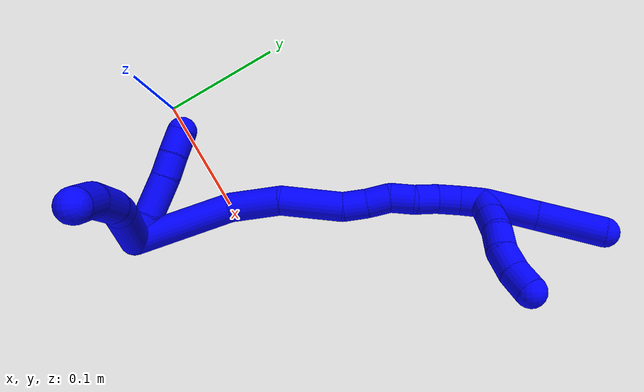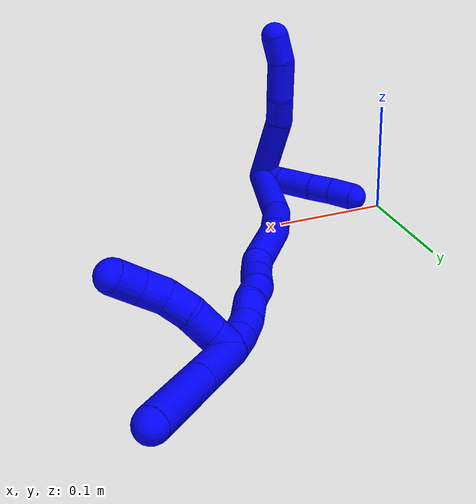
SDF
<sdf version="1.7">
 <world name="default">
  <model name="1">
   <static>0</static>
   <link name="1">
    <collision name="collision-cylinder-e_1_2_8">
     <pose>-0.017697 -0.02132 0.017835 0.874168 -0.566948 -0.27056</pose>
     <geometry><cylinder><radius>0.0125</radius><length>0.065904</length></cylinder></geometry>
     <surface>
      <friction><ode><mu>1.16</mu><mu2>1.16</mu2><slip1>0</slip1><slip2>0</slip2></ode></friction>
      <contact><ode><kp>1e+06</kp><kd>1</kd><max_vel>0</max_vel><min_depth>0.001</min_depth></ode></contact>
     </surface>
    </collision>
    <visual name="visual-cylinder-e_1_2_8">
     <pose>-0.017697 -0.02132 0.017835 0.874168 -0.566948 -0.27056</pose>
     <geometry><cylinder><radius>0.0125</radius><length>0.065904</length></cylinder></geometry>
     <material><ambient>0 0 1 1</ambient></material>
    </visual>
    <collision name="collision-cylinder-e_2_8_9">
     <pose>-0.039499 -0.051911 0.04321 0.888013 -0.330856 -0.158502</pose>
     <geometry><cylinder><radius>0.0125</radius><length>0.02527</length></cylinder></geometry>
     <surface>
      <friction><ode><mu>1.16</mu><mu2>1.16</mu2><slip1>0</slip1><slip2>0</slip2></ode></friction>
      <contact><ode><kp>1e+06</kp><kd>1</kd><max_vel>0</max_vel><min_depth>0.001</min_depth></ode></contact>
     </surface>
    </collision>
    <visual name="visual-cylinder-e_2_8_9">
     <pose>-0.039499 -0.051911 0.04321 0.888013 -0.330856 -0.158502</pose>
     <geometry><cylinder><radius>0.0125</radius><length>0.02527</length></cylinder></geometry>
     <material><ambient>0 0 1 1</ambient></material>
    </visual>
    <collision name="collision-cylinder-e_3_9_10">
     <pose>-0.049323 -0.075464 0.058083 1.09645 -0.342241 -0.21028</pose>
     <geometry><cylinder><radius>0.0125</radius><length>0.034086</length></cylinder></geometry>
     <surface>
      <friction><ode><mu>1.16</mu><mu2>1.16</mu2><slip1>0</slip1><slip2>0</slip2></ode></friction>
      <contact><ode><kp>1e+06</kp><kd>1</kd><max_vel>0</max_vel><min_depth>0.001</min_depth></ode></contact>
     </surface>
    </collision>
    <visual name="visual-cylinder-e_3_9_10">
     <pose>-0.049323 -0.075464 0.058083 1.09645 -0.342241 -0.21028</pose>
     <geometry><cylinder><radius>0.0125</radius><length>0.034086</length></cylinder></geometry>
     <material><ambient>0 0 1 1</ambient></material>
    </visual>
    <collision name="collision-cylinder-e_4_10_6">
     <pose>-0.055893 -0.100958 0.070572 1.13977 -0.068822 -0.044112</pose>
     <geometry><cylinder><radius>0.0125</radius><length>0.02474</length></cylinder></geometry>
     <surface>
      <friction><ode><mu>1.16</mu><mu2>1.16</mu2><slip1>0</slip1><slip2>0</slip2></ode></friction>
      <contact><ode><kp>1e+06</kp><kd>1</kd><max_vel>0</max_vel><min_depth>0.001</min_depth></ode></contact>
     </surface>
    </collision>
    <visual name="visual-cylinder-e_4_10_6">
     <pose>-0.055893 -0.100958 0.070572 1.13977 -0.068822 -0.044112</pose>
     <geometry><cylinder><radius>0.0125</radius><length>0.02474</length></cylinder></geometry>
     <material><ambient>0 0 1 1</ambient></material>
    </visual>
    <collision name="collision-cylinder-e_1_2_11">
     <pose>-0.009758 0.005284 0.005185 -0.794838 -0.921752 0.410966</pose>
     <geometry><cylinder><radius>0.0125</radius><length>0.024497</length></cylinder></geometry>
     <surface>
      <friction><ode><mu>1.16</mu><mu2>1.16</mu2><slip1>0</slip1><slip2>0</slip2></ode></friction>
      <contact><ode><kp>1e+06</kp><kd>1</kd><max_vel>0</max_vel><min_depth>0.001</min_depth></ode></contact>
     </surface>
    </collision>
    <visual name="visual-cylinder-e_1_2_11">
     <pose>-0.009758 0.005284 0.005185 -0.794838 -0.921752 0.410966</pose>
     <geometry><cylinder><radius>0.0125</radius><length>0.024497</length></cylinder></geometry>
     <material><ambient>0 0 1 1</ambient></material>
    </visual>
    <collision name="collision-cylinder-e_2_11_12">
     <pose>-0.033546 0.018295 0.015755 -0.962186 -0.979616 0.542864</pose>
     <geometry><cylinder><radius>0.0125</radius><length>0.033796</length></cylinder></geometry>
     <surface>
      <friction><ode><mu>1.16</mu><mu2>1.16</mu2><slip1>0</slip1><slip2>0</slip2></ode></friction>
      <contact><ode><kp>1e+06</kp><kd>1</kd><max_vel>0</max_vel><min_depth>0.001</min_depth></ode></contact>
     </surface>
    </collision>
    <visual name="visual-cylinder-e_2_11_12">
     <pose>-0.033546 0.018295 0.015755 -0.962186 -0.979616 0.542864</pose>
     <geometry><cylinder><radius>0.0125</radius><length>0.033796</length></cylinder></geometry>
     <material><ambient>0 0 1 1</ambient></material>
    </visual>
    <collision name="collision-cylinder-e_3_12_13">
     <pose>-0.05627 0.030498 0.023541 -1.07835 -1.04205 0.661534</pose>
     <geometry><cylinder><radius>0.0125</radius><length>0.020138</length></cylinder></geometry>
     <surface>
      <friction><ode><mu>1.16</mu><mu2>1.16</mu2><slip1>0</slip1><slip2>0</slip2></ode></friction>
      <contact><ode><kp>1e+06</kp><kd>1</kd><max_vel>0</max_vel><min_depth>0.001</min_depth></ode></contact>
     </surface>
    </collision>
    <visual name="visual-cylinder-e_3_12_13">
     <pose>-0.05627 0.030498 0.023541 -1.07835 -1.04205 0.661534</pose>
     <geometry><cylinder><radius>0.0125</radius><length>0.020138</length></cylinder></geometry>
     <material><ambient>0 0 1 1</ambient></material>
    </visual>
    <collision name="collision-cylinder-e_4_13_5">
     <pose>-0.073996 0.040347 0.028361 -1.1478 -0.9927 0.673557</pose>
     <geometry><cylinder><radius>0.0125</radius><length>0.021569</length></cylinder></geometry>
     <surface>
      <friction><ode><mu>1.16</mu><mu2>1.16</mu2><slip1>0</slip1><slip2>0</slip2></ode></friction>
      <contact><ode><kp>1e+06</kp><kd>1</kd><max_vel>0</max_vel><min_depth>0.001</min_depth></ode></contact>
     </surface>
    </collision>
    <visual name="visual-cylinder-e_4_13_5">
     <pose>-0.073996 0.040347 0.028361 -1.1478 -0.9927 0.673557</pose>
     <geometry><cylinder><radius>0.0125</radius><length>0.021569</length></cylinder></geometry>
     <material><ambient>0 0 1 1</ambient></material>
    </visual>
    <collision name="collision-cylinder-e_1_2_14">
     <pose>-0.007278 0.022068 0.034628 -0.56738 -0.175415 0.051263</pose>
     <geometry><cylinder><radius>0.0125</radius><length>0.083404</length></cylinder></geometry>
     <surface>
      <friction><ode><mu>1.16</mu><mu2>1.16</mu2><slip1>0</slip1><slip2>0</slip2></ode></friction>
      <contact><ode><kp>1e+06</kp><kd>1</kd><max_vel>0</max_vel><min_depth>0.001</min_depth></ode></contact>
     </surface>
    </collision>
    <visual name="visual-cylinder-e_1_2_14">
     <pose>-0.007278 0.022068 0.034628 -0.56738 -0.175415 0.051263</pose>
     <geometry><cylinder><radius>0.0125</radius><length>0.083404</length></cylinder></geometry>
     <material><ambient>0 0 1 1</ambient></material>
    </visual>
    <collision name="collision-cylinder-e_2_14_15">
     <pose>-0.014784 0.052154 0.089385 -0.379105 -0.010574 0.002029</pose>
     <geometry><cylinder><radius>0.0125</radius><length>0.043338</length></cylinder></geometry>
     <surface>
      <friction><ode><mu>1.16</mu><mu2>1.16</mu2><slip1>0</slip1><slip2>0</slip2></ode></friction>
      <contact><ode><kp>1e+06</kp><kd>1</kd><max_vel>0</max_vel><min_depth>0.001</min_depth></ode></contact>
     </surface>
    </collision>
    <visual name="visual-cylinder-e_2_14_15">
     <pose>-0.014784 0.052154 0.089385 -0.379105 -0.010574 0.002029</pose>
     <geometry><cylinder><radius>0.0125</radius><length>0.043338</length></cylinder></geometry>
     <material><ambient>0 0 1 1</ambient></material>
    </visual>
    <collision name="collision-cylinder-e_3_15_16">
     <pose>-0.008575 0.070922 0.132553 -0.436526 0.248047 -0.055286</pose>
     <geometry><cylinder><radius>0.0125</radius><length>0.052449</length></cylinder></geometry>
     <surface>
      <friction><ode><mu>1.16</mu><mu2>1.16</mu2><slip1>0</slip1><slip2>0</slip2></ode></friction>
      <contact><ode><kp>1e+06</kp><kd>1</kd><max_vel>0</max_vel><min_depth>0.001</min_depth></ode></contact>
     </surface>
    </collision>
    <visual name="visual-cylinder-e_3_15_16">
     <pose>-0.008575 0.070922 0.132553 -0.436526 0.248047 -0.055286</pose>
     <geometry><cylinder><radius>0.0125</radius><length>0.052449</length></cylinder></geometry>
     <material><ambient>0 0 1 1</ambient></material>
    </visual>
    <collision name="collision-cylinder-e_4_16_17">
     <pose>-0.001973 0.08682 0.164393 -0.529424 0.016088 -0.004361</pose>
     <geometry><cylinder><radius>0.0125</radius><length>0.020399</length></cylinder></geometry>
     <surface>
      <friction><ode><mu>1.16</mu><mu2>1.16</mu2><slip1>0</slip1><slip2>0</slip2></ode></friction>
      <contact><ode><kp>1e+06</kp><kd>1</kd><max_vel>0</max_vel><min_depth>0.001</min_depth></ode></contact>
     </surface>
    </collision>
    <visual name="visual-cylinder-e_4_16_17">
     <pose>-0.001973 0.08682 0.164393 -0.529424 0.016088 -0.004361</pose>
     <geometry><cylinder><radius>0.0125</radius><length>0.020399</length></cylinder></geometry>
     <material><ambient>0 0 1 1</ambient></material>
    </visual>
    <collision name="collision-cylinder-e_5_17_18">
     <pose>-0.002783 0.096633 0.182131 -0.480868 -0.096332 0.023636</pose>
     <geometry><cylinder><radius>0.0125</radius><length>0.020253</length></cylinder></geometry>
     <surface>
      <friction><ode><mu>1.16</mu><mu2>1.16</mu2><slip1>0</slip1><slip2>0</slip2></ode></friction>
      <contact><ode><kp>1e+06</kp><kd>1</kd><max_vel>0</max_vel><min_depth>0.001</min_depth></ode></contact>
     </surface>
    </collision>
    <visual name="visual-cylinder-e_5_17_18">
     <pose>-0.002783 0.096633 0.182131 -0.480868 -0.096332 0.023636</pose>
     <geometry><cylinder><radius>0.0125</radius><length>0.020253</length></cylinder></geometry>
     <material><ambient>0 0 1 1</ambient></material>
    </visual>
    <collision name="collision-cylinder-e_6_18_19">
     <pose>-0.001569 0.105088 0.20012 -0.396807 0.219279 -0.044256</pose>
     <geometry><cylinder><radius>0.0125</radius><length>0.020112</length></cylinder></geometry>
     <surface>
      <friction><ode><mu>1.16</mu><mu2>1.16</mu2><slip1>0</slip1><slip2>0</slip2></ode></friction>
      <contact><ode><kp>1e+06</kp><kd>1</kd><max_vel>0</max_vel><min_depth>0.001</min_depth></ode></contact>
     </surface>
    </collision>
    <visual name="visual-cylinder-e_6_18_19">
     <pose>-0.001569 0.105088 0.20012 -0.396807 0.219279 -0.044256</pose>
     <geometry><cylinder><radius>0.0125</radius><length>0.020112</length></cylinder></geometry>
     <material><ambient>0 0 1 1</ambient></material>
    </visual>
    <collision name="collision-cylinder-e_7_19_20">
     <pose>0.0022 0.115431 0.216579 -0.723989 0.158683 -0.060198</pose>
     <geometry><cylinder><radius>0.0125</radius><length>0.020025</length></cylinder></geometry>
     <surface>
      <friction><ode><mu>1.16</mu><mu2>1.16</mu2><slip1>0</slip1><slip2>0</slip2></ode></friction>
      <contact><ode><kp>1e+06</kp><kd>1</kd><max_vel>0</max_vel><min_depth>0.001</min_depth></ode></contact>
     </surface>
    </collision>
    <visual name="visual-cylinder-e_7_19_20">
     <pose>0.0022 0.115431 0.216579 -0.723989 0.158683 -0.060198</pose>
     <geometry><cylinder><radius>0.0125</radius><length>0.020025</length></cylinder></geometry>
     <material><ambient>0 0 1 1</ambient></material>
    </visual>
    <collision name="collision-cylinder-e_8_20_21">
     <pose>0.00588 0.12614 0.232844 -0.439077 0.211102 -0.047271</pose>
     <geometry><cylinder><radius>0.0125</radius><length>0.020017</length></cylinder></geometry>
     <surface>
      <friction><ode><mu>1.16</mu><mu2>1.16</mu2><slip1>0</slip1><slip2>0</slip2></ode></friction>
      <contact><ode><kp>1e+06</kp><kd>1</kd><max_vel>0</max_vel><min_depth>0.001</min_depth></ode></contact>
     </surface>
    </collision>
    <visual name="visual-cylinder-e_8_20_21">
     <pose>0.00588 0.12614 0.232844 -0.439077 0.211102 -0.047271</pose>
     <geometry><cylinder><radius>0.0125</radius><length>0.020017</length></cylinder></geometry>
     <material><ambient>0 0 1 1</ambient></material>
    </visual>
    <collision name="collision-cylinder-e_9_21_1">
     <pose>0.01006 0.133067 0.251085 -0.286778 0.209785 -0.030398</pose>
     <geometry><cylinder><radius>0.0125</radius><length>0.020003</length></cylinder></geometry>
     <surface>
      <friction><ode><mu>1.16</mu><mu2>1.16</mu2><slip1>0</slip1><slip2>0</slip2></ode></friction>
      <contact><ode><kp>1e+06</kp><kd>1</kd><max_vel>0</max_vel><min_depth>0.001</min_depth></ode></contact>
     </surface>
    </collision>
    <visual name="visual-cylinder-e_9_21_1">
     <pose>0.01006 0.133067 0.251085 -0.286778 0.209785 -0.030398</pose>
     <geometry><cylinder><radius>0.0125</radius><length>0.020003</length></cylinder></geometry>
     <material><ambient>0 0 1 1</ambient></material>
    </visual>
    <collision name="collision-cylinder-e_1_1_22">
     <pose>0.016064 0.127864 0.265062 1.04788 0.403006 0.234975</pose>
     <geometry><cylinder><radius>0.0125</radius><length>0.02</length></cylinder></geometry>
     <surface>
      <friction><ode><mu>1.16</mu><mu2>1.16</mu2><slip1>0</slip1><slip2>0</slip2></ode></friction>
      <contact><ode><kp>1e+06</kp><kd>1</kd><max_vel>0</max_vel><min_depth>0.001</min_depth></ode></contact>
     </surface>
    </collision>
    <visual name="visual-cylinder-e_1_1_22">
     <pose>0.016064 0.127864 0.265062 1.04788 0.403006 0.234975</pose>
     <geometry><cylinder><radius>0.0125</radius><length>0.02</length></cylinder></geometry>
     <material><ambient>0 0 1 1</ambient></material>
    </visual>
    <collision name="collision-cylinder-e_2_22_23">
     <pose>0.023918 0.111825 0.274062 1.07109 0.404103 0.241921</pose>
     <geometry><cylinder><radius>0.0125</radius><length>0.02</length></cylinder></geometry>
     <surface>
      <friction><ode><mu>1.16</mu><mu2>1.16</mu2><slip1>0</slip1><slip2>0</slip2></ode></friction>
      <contact><ode><kp>1e+06</kp><kd>1</kd><max_vel>0</max_vel><min_depth>0.001</min_depth></ode></contact>
     </surface>
    </collision>
    <visual name="visual-cylinder-e_2_22_23">
     <pose>0.023918 0.111825 0.274062 1.07109 0.404103 0.241921</pose>
     <geometry><cylinder><radius>0.0125</radius><length>0.02</length></cylinder></geometry>
     <material><ambient>0 0 1 1</ambient></material>
    </visual>
    <collision name="collision-cylinder-e_3_23_24">
     <pose>0.033801 0.09632 0.281518 1.18139 0.637409 0.435492</pose>
     <geometry><cylinder><radius>0.0125</radius><length>0.02</length></cylinder></geometry>
     <surface>
      <friction><ode><mu>1.16</mu><mu2>1.16</mu2><slip1>0</slip1><slip2>0</slip2></ode></friction>
      <contact><ode><kp>1e+06</kp><kd>1</kd><max_vel>0</max_vel><min_depth>0.001</min_depth></ode></contact>
     </surface>
    </collision>
    <visual name="visual-cylinder-e_3_23_24">
     <pose>0.033801 0.09632 0.281518 1.18139 0.637409 0.435492</pose>
     <geometry><cylinder><radius>0.0125</radius><length>0.02</length></cylinder></geometry>
     <material><ambient>0 0 1 1</ambient></material>
    </visual>
    <collision name="collision-cylinder-e_4_24_25">
     <pose>0.046192 0.083378 0.28988 0.803548 0.699689 0.307593</pose>
     <geometry><cylinder><radius>0.0125</radius><length>0.02</length></cylinder></geometry>
     <surface>
      <friction><ode><mu>1.16</mu><mu2>1.16</mu2><slip1>0</slip1><slip2>0</slip2></ode></friction>
      <contact><ode><kp>1e+06</kp><kd>1</kd><max_vel>0</max_vel><min_depth>0.001</min_depth></ode></contact>
     </surface>
    </collision>
    <visual name="visual-cylinder-e_4_24_25">
     <pose>0.046192 0.083378 0.28988 0.803548 0.699689 0.307593</pose>
     <geometry><cylinder><radius>0.0125</radius><length>0.02</length></cylinder></geometry>
     <material><ambient>0 0 1 1</ambient></material>
    </visual>
    <collision name="collision-cylinder-e_5_25_4">
     <pose>0.057969 0.072704 0.301886 0.657216 0.562943 0.196547</pose>
     <geometry><cylinder><radius>0.0125</radius><length>0.02</length></cylinder></geometry>
     <surface>
      <friction><ode><mu>1.16</mu><mu2>1.16</mu2><slip1>0</slip1><slip2>0</slip2></ode></friction>
      <contact><ode><kp>1e+06</kp><kd>1</kd><max_vel>0</max_vel><min_depth>0.001</min_depth></ode></contact>
     </surface>
    </collision>
    <visual name="visual-cylinder-e_5_25_4">
     <pose>0.057969 0.072704 0.301886 0.657216 0.562943 0.196547</pose>
     <geometry><cylinder><radius>0.0125</radius><length>0.02</length></cylinder></geometry>
     <material><ambient>0 0 1 1</ambient></material>
    </visual>
    <collision name="collision-cylinder-e_1_1_26">
     <pose>0.019689 0.140895 0.280844 -0.24344 0.345064 -0.042627</pose>
     <geometry><cylinder><radius>0.0125</radius><length>0.044621</length></cylinder></geometry>
     <surface>
      <friction><ode><mu>1.16</mu><mu2>1.16</mu2><slip1>0</slip1><slip2>0</slip2></ode></friction>
      <contact><ode><kp>1e+06</kp><kd>1</kd><max_vel>0</max_vel><min_depth>0.001</min_depth></ode></contact>
     </surface>
    </collision>
    <visual name="visual-cylinder-e_1_1_26">
     <pose>0.019689 0.140895 0.280844 -0.24344 0.345064 -0.042627</pose>
     <geometry><cylinder><radius>0.0125</radius><length>0.044621</length></cylinder></geometry>
     <material><ambient>0 0 1 1</ambient></material>
    </visual>
    <collision name="collision-cylinder-e_2_26_3">
     <pose>0.036709 0.152184 0.326483 -0.241742 0.34915 -0.042838</pose>
     <geometry><cylinder><radius>0.0125</radius><length>0.055379</length></cylinder></geometry>
     <surface>
      <friction><ode><mu>1.16</mu><mu2>1.16</mu2><slip1>0</slip1><slip2>0</slip2></ode></friction>
      <contact><ode><kp>1e+06</kp><kd>1</kd><max_vel>0</max_vel><min_depth>0.001</min_depth></ode></contact>
     </surface>
    </collision>
    <visual name="visual-cylinder-e_2_26_3">
     <pose>0.036709 0.152184 0.326483 -0.241742 0.34915 -0.042838</pose>
     <geometry><cylinder><radius>0.0125</radius><length>0.055379</length></cylinder></geometry>
     <material><ambient>0 0 1 1</ambient></material>
    </visual>
    <collision name="collision-sphere-3">
     <pose>0.046181 0.158413 0.351745 0 -0 0</pose>
     <geometry><sphere><radius>0.0125</radius></sphere></geometry>
     <surface>
      <friction><ode><mu>1.16</mu><mu2>1.16</mu2><slip1>0</slip1><slip2>0</slip2></ode></friction>
      <contact><ode><kp>1e+06</kp><kd>1</kd><max_vel>0</max_vel><min_depth>0.001</min_depth></ode></contact>
     </surface>
    </collision>
    <visual name="visual-sphere-3">
     <pose>0.046181 0.158413 0.351745 0 -0 0</pose>
     <geometry><sphere><radius>0.0125</radius></sphere></geometry>
     <material><ambient>0 0 1 1</ambient></material>
    </visual>
    <collision name="collision-sphere-26">
     <pose>0.027236 0.145956 0.301221 0 -0 0</pose>
     <geometry><sphere><radius>0.0125</radius></sphere></geometry>
     <surface>
      <friction><ode><mu>1.16</mu><mu2>1.16</mu2><slip1>0</slip1><slip2>0</slip2></ode></friction>
      <contact><ode><kp>1e+06</kp><kd>1</kd><max_vel>0</max_vel><min_depth>0.001</min_depth></ode></contact>
     </surface>
    </collision>
    <visual name="visual-sphere-26">
     <pose>0.027236 0.145956 0.301221 0 -0 0</pose>
     <geometry><sphere><radius>0.0125</radius></sphere></geometry>
     <material><ambient>0 0 1 1</ambient></material>
    </visual>
    <collision name="collision-sphere-4">
     <pose>0.063306 0.067538 0.308581 0 -0 0</pose>
     <geometry><sphere><radius>0.0125</radius></sphere></geometry>
     <surface>
      <friction><ode><mu>1.16</mu><mu2>1.16</mu2><slip1>0</slip1><slip2>0</slip2></ode></friction>
      <contact><ode><kp>1e+06</kp><kd>1</kd><max_vel>0</max_vel><min_depth>0.001</min_depth></ode></contact>
     </surface>
    </collision>
    <visual name="visual-sphere-4">
     <pose>0.063306 0.067538 0.308581 0 -0 0</pose>
     <geometry><sphere><radius>0.0125</radius></sphere></geometry>
     <material><ambient>0 0 1 1</ambient></material>
    </visual>
    <collision name="collision-sphere-25">
     <pose>0.052632 0.077871 0.295191 0 -0 0</pose>
     <geometry><sphere><radius>0.0125</radius></sphere></geometry>
     <surface>
      <friction><ode><mu>1.16</mu><mu2>1.16</mu2><slip1>0</slip1><slip2>0</slip2></ode></friction>
      <contact><ode><kp>1e+06</kp><kd>1</kd><max_vel>0</max_vel><min_depth>0.001</min_depth></ode></contact>
     </surface>
    </collision>
    <visual name="visual-sphere-25">
     <pose>0.052632 0.077871 0.295191 0 -0 0</pose>
     <geometry><sphere><radius>0.0125</radius></sphere></geometry>
     <material><ambient>0 0 1 1</ambient></material>
    </visual>
    <collision name="collision-sphere-24">
     <pose>0.039752 0.088885 0.284569 0 -0 0</pose>
     <geometry><sphere><radius>0.0125</radius></sphere></geometry>
     <surface>
      <friction><ode><mu>1.16</mu><mu2>1.16</mu2><slip1>0</slip1><slip2>0</slip2></ode></friction>
      <contact><ode><kp>1e+06</kp><kd>1</kd><max_vel>0</max_vel><min_depth>0.001</min_depth></ode></contact>
     </surface>
    </collision>
    <visual name="visual-sphere-24">
     <pose>0.039752 0.088885 0.284569 0 -0 0</pose>
     <geometry><sphere><radius>0.0125</radius></sphere></geometry>
     <material><ambient>0 0 1 1</ambient></material>
    </visual>
    <collision name="collision-sphere-23">
     <pose>0.02785 0.103754 0.278467 0 -0 0</pose>
     <geometry><sphere><radius>0.0125</radius></sphere></geometry>
     <surface>
      <friction><ode><mu>1.16</mu><mu2>1.16</mu2><slip1>0</slip1><slip2>0</slip2></ode></friction>
      <contact><ode><kp>1e+06</kp><kd>1</kd><max_vel>0</max_vel><min_depth>0.001</min_depth></ode></contact>
     </surface>
    </collision>
    <visual name="visual-sphere-23">
     <pose>0.02785 0.103754 0.278467 0 -0 0</pose>
     <geometry><sphere><radius>0.0125</radius></sphere></geometry>
     <material><ambient>0 0 1 1</ambient></material>
    </visual>
    <collision name="collision-sphere-22">
     <pose>0.019986 0.119895 0.269656 0 -0 0</pose>
     <geometry><sphere><radius>0.0125</radius></sphere></geometry>
     <surface>
      <friction><ode><mu>1.16</mu><mu2>1.16</mu2><slip1>0</slip1><slip2>0</slip2></ode></friction>
      <contact><ode><kp>1e+06</kp><kd>1</kd><max_vel>0</max_vel><min_depth>0.001</min_depth></ode></contact>
     </surface>
    </collision>
    <visual name="visual-sphere-22">
     <pose>0.019986 0.119895 0.269656 0 -0 0</pose>
     <geometry><sphere><radius>0.0125</radius></sphere></geometry>
     <material><ambient>0 0 1 1</ambient></material>
    </visual>
    <collision name="collision-sphere-1">
     <pose>0.012143 0.135834 0.260468 0 -0 0</pose>
     <geometry><sphere><radius>0.0125</radius></sphere></geometry>
     <surface>
      <friction><ode><mu>1.16</mu><mu2>1.16</mu2><slip1>0</slip1><slip2>0</slip2></ode></friction>
      <contact><ode><kp>1e+06</kp><kd>1</kd><max_vel>0</max_vel><min_depth>0.001</min_depth></ode></contact>
     </surface>
    </collision>
    <visual name="visual-sphere-1">
     <pose>0.012143 0.135834 0.260468 0 -0 0</pose>
     <geometry><sphere><radius>0.0125</radius></sphere></geometry>
     <material><ambient>0 0 1 1</ambient></material>
    </visual>
    <collision name="collision-sphere-21">
     <pose>0.007977 0.1303 0.241702 0 -0 0</pose>
     <geometry><sphere><radius>0.0125</radius></sphere></geometry>
     <surface>
      <friction><ode><mu>1.16</mu><mu2>1.16</mu2><slip1>0</slip1><slip2>0</slip2></ode></friction>
      <contact><ode><kp>1e+06</kp><kd>1</kd><max_vel>0</max_vel><min_depth>0.001</min_depth></ode></contact>
     </surface>
    </collision>
    <visual name="visual-sphere-21">
     <pose>0.007977 0.1303 0.241702 0 -0 0</pose>
     <geometry><sphere><radius>0.0125</radius></sphere></geometry>
     <material><ambient>0 0 1 1</ambient></material>
    </visual>
    <collision name="collision-sphere-11">
     <pose>-0.019515 0.010568 0.01037 0 -0 0</pose>
     <geometry><sphere><radius>0.0125</radius></sphere></geometry>
     <surface>
      <friction><ode><mu>1.16</mu><mu2>1.16</mu2><slip1>0</slip1><slip2>0</slip2></ode></friction>
      <contact><ode><kp>1e+06</kp><kd>1</kd><max_vel>0</max_vel><min_depth>0.001</min_depth></ode></contact>
     </surface>
    </collision>
    <visual name="visual-sphere-11">
     <pose>-0.019515 0.010568 0.01037 0 -0 0</pose>
     <geometry><sphere><radius>0.0125</radius></sphere></geometry>
     <material><ambient>0 0 1 1</ambient></material>
    </visual>
    <collision name="collision-sphere-6">
     <pose>-0.056744 -0.11217 0.075728 0 -0 0</pose>
     <geometry><sphere><radius>0.0125</radius></sphere></geometry>
     <surface>
      <friction><ode><mu>1.16</mu><mu2>1.16</mu2><slip1>0</slip1><slip2>0</slip2></ode></friction>
      <contact><ode><kp>1e+06</kp><kd>1</kd><max_vel>0</max_vel><min_depth>0.001</min_depth></ode></contact>
     </surface>
    </collision>
    <visual name="visual-sphere-6">
     <pose>-0.056744 -0.11217 0.075728 0 -0 0</pose>
     <geometry><sphere><radius>0.0125</radius></sphere></geometry>
     <material><ambient>0 0 1 1</ambient></material>
    </visual>
    <collision name="collision-sphere-10">
     <pose>-0.055043 -0.089746 0.065416 0 -0 0</pose>
     <geometry><sphere><radius>0.0125</radius></sphere></geometry>
     <surface>
      <friction><ode><mu>1.16</mu><mu2>1.16</mu2><slip1>0</slip1><slip2>0</slip2></ode></friction>
      <contact><ode><kp>1e+06</kp><kd>1</kd><max_vel>0</max_vel><min_depth>0.001</min_depth></ode></contact>
     </surface>
    </collision>
    <visual name="visual-sphere-10">
     <pose>-0.055043 -0.089746 0.065416 0 -0 0</pose>
     <geometry><sphere><radius>0.0125</radius></sphere></geometry>
     <material><ambient>0 0 1 1</ambient></material>
    </visual>
    <collision name="collision-sphere-9">
     <pose>-0.043604 -0.061182 0.05075 0 -0 0</pose>
     <geometry><sphere><radius>0.0125</radius></sphere></geometry>
     <surface>
      <friction><ode><mu>1.16</mu><mu2>1.16</mu2><slip1>0</slip1><slip2>0</slip2></ode></friction>
      <contact><ode><kp>1e+06</kp><kd>1</kd><max_vel>0</max_vel><min_depth>0.001</min_depth></ode></contact>
     </surface>
    </collision>
    <visual name="visual-sphere-9">
     <pose>-0.043604 -0.061182 0.05075 0 -0 0</pose>
     <geometry><sphere><radius>0.0125</radius></sphere></geometry>
     <material><ambient>0 0 1 1</ambient></material>
    </visual>
    <collision name="collision-sphere-2">
     <geometry><sphere><radius>0.0125</radius></sphere></geometry>
     <surface>
      <friction><ode><mu>1.16</mu><mu2>1.16</mu2><slip1>0</slip1><slip2>0</slip2></ode></friction>
      <contact><ode><kp>1e+06</kp><kd>1</kd><max_vel>0</max_vel><min_depth>0.001</min_depth></ode></contact>
     </surface>
    </collision>
    <visual name="visual-sphere-2">
     <geometry><sphere><radius>0.0125</radius></sphere></geometry>
     <material><ambient>0 0 1 1</ambient></material>
    </visual>
    <collision name="collision-sphere-19">
     <pose>0.000618 0.108882 0.209172 0 -0 0</pose>
     <geometry><sphere><radius>0.0125</radius></sphere></geometry>
     <surface>
      <friction><ode><mu>1.16</mu><mu2>1.16</mu2><slip1>0</slip1><slip2>0</slip2></ode></friction>
      <contact><ode><kp>1e+06</kp><kd>1</kd><max_vel>0</max_vel><min_depth>0.001</min_depth></ode></contact>
     </surface>
    </collision>
    <visual name="visual-sphere-19">
     <pose>0.000618 0.108882 0.209172 0 -0 0</pose>
     <geometry><sphere><radius>0.0125</radius></sphere></geometry>
     <material><ambient>0 0 1 1</ambient></material>
    </visual>
    <collision name="collision-sphere-8">
     <pose>-0.035395 -0.042641 0.035671 0 -0 0</pose>
     <geometry><sphere><radius>0.0125</radius></sphere></geometry>
     <surface>
      <friction><ode><mu>1.16</mu><mu2>1.16</mu2><slip1>0</slip1><slip2>0</slip2></ode></friction>
      <contact><ode><kp>1e+06</kp><kd>1</kd><max_vel>0</max_vel><min_depth>0.001</min_depth></ode></contact>
     </surface>
    </collision>
    <visual name="visual-sphere-8">
     <pose>-0.035395 -0.042641 0.035671 0 -0 0</pose>
     <geometry><sphere><radius>0.0125</radius></sphere></geometry>
     <material><ambient>0 0 1 1</ambient></material>
    </visual>
    <collision name="collision-sphere-12">
     <pose>-0.047576 0.026022 0.02114 0 -0 0</pose>
     <geometry><sphere><radius>0.0125</radius></sphere></geometry>
     <surface>
      <friction><ode><mu>1.16</mu><mu2>1.16</mu2><slip1>0</slip1><slip2>0</slip2></ode></friction>
      <contact><ode><kp>1e+06</kp><kd>1</kd><max_vel>0</max_vel><min_depth>0.001</min_depth></ode></contact>
     </surface>
    </collision>
    <visual name="visual-sphere-12">
     <pose>-0.047576 0.026022 0.02114 0 -0 0</pose>
     <geometry><sphere><radius>0.0125</radius></sphere></geometry>
     <material><ambient>0 0 1 1</ambient></material>
    </visual>
    <collision name="collision-sphere-13">
     <pose>-0.064964 0.034974 0.025942 0 -0 0</pose>
     <geometry><sphere><radius>0.0125</radius></sphere></geometry>
     <surface>
      <friction><ode><mu>1.16</mu><mu2>1.16</mu2><slip1>0</slip1><slip2>0</slip2></ode></friction>
      <contact><ode><kp>1e+06</kp><kd>1</kd><max_vel>0</max_vel><min_depth>0.001</min_depth></ode></contact>
     </surface>
    </collision>
    <visual name="visual-sphere-13">
     <pose>-0.064964 0.034974 0.025942 0 -0 0</pose>
     <geometry><sphere><radius>0.0125</radius></sphere></geometry>
     <material><ambient>0 0 1 1</ambient></material>
    </visual>
    <collision name="collision-sphere-5">
     <pose>-0.083028 0.045721 0.030781 0 -0 0</pose>
     <geometry><sphere><radius>0.0125</radius></sphere></geometry>
     <surface>
      <friction><ode><mu>1.16</mu><mu2>1.16</mu2><slip1>0</slip1><slip2>0</slip2></ode></friction>
      <contact><ode><kp>1e+06</kp><kd>1</kd><max_vel>0</max_vel><min_depth>0.001</min_depth></ode></contact>
     </surface>
    </collision>
    <visual name="visual-sphere-5">
     <pose>-0.083028 0.045721 0.030781 0 -0 0</pose>
     <geometry><sphere><radius>0.0125</radius></sphere></geometry>
     <material><ambient>0 0 1 1</ambient></material>
    </visual>
    <collision name="collision-sphere-14">
     <pose>-0.014555 0.044135 0.069256 0 -0 0</pose>
     <geometry><sphere><radius>0.0125</radius></sphere></geometry>
     <surface>
      <friction><ode><mu>1.16</mu><mu2>1.16</mu2><slip1>0</slip1><slip2>0</slip2></ode></friction>
      <contact><ode><kp>1e+06</kp><kd>1</kd><max_vel>0</max_vel><min_depth>0.001</min_depth></ode></contact>
     </surface>
    </collision>
    <visual name="visual-sphere-14">
     <pose>-0.014555 0.044135 0.069256 0 -0 0</pose>
     <geometry><sphere><radius>0.0125</radius></sphere></geometry>
     <material><ambient>0 0 1 1</ambient></material>
    </visual>
    <collision name="collision-sphere-15">
     <pose>-0.015014 0.060174 0.109515 0 -0 0</pose>
     <geometry><sphere><radius>0.0125</radius></sphere></geometry>
     <surface>
      <friction><ode><mu>1.16</mu><mu2>1.16</mu2><slip1>0</slip1><slip2>0</slip2></ode></friction>
      <contact><ode><kp>1e+06</kp><kd>1</kd><max_vel>0</max_vel><min_depth>0.001</min_depth></ode></contact>
     </surface>
    </collision>
    <visual name="visual-sphere-15">
     <pose>-0.015014 0.060174 0.109515 0 -0 0</pose>
     <geometry><sphere><radius>0.0125</radius></sphere></geometry>
     <material><ambient>0 0 1 1</ambient></material>
    </visual>
    <collision name="collision-sphere-16">
     <pose>-0.002137 0.08167 0.155591 0 -0 0</pose>
     <geometry><sphere><radius>0.0125</radius></sphere></geometry>
     <surface>
      <friction><ode><mu>1.16</mu><mu2>1.16</mu2><slip1>0</slip1><slip2>0</slip2></ode></friction>
      <contact><ode><kp>1e+06</kp><kd>1</kd><max_vel>0</max_vel><min_depth>0.001</min_depth></ode></contact>
     </surface>
    </collision>
    <visual name="visual-sphere-16">
     <pose>-0.002137 0.08167 0.155591 0 -0 0</pose>
     <geometry><sphere><radius>0.0125</radius></sphere></geometry>
     <material><ambient>0 0 1 1</ambient></material>
    </visual>
    <collision name="collision-sphere-17">
     <pose>-0.001809 0.091971 0.173195 0 -0 0</pose>
     <geometry><sphere><radius>0.0125</radius></sphere></geometry>
     <surface>
      <friction><ode><mu>1.16</mu><mu2>1.16</mu2><slip1>0</slip1><slip2>0</slip2></ode></friction>
      <contact><ode><kp>1e+06</kp><kd>1</kd><max_vel>0</max_vel><min_depth>0.001</min_depth></ode></contact>
     </surface>
    </collision>
    <visual name="visual-sphere-17">
     <pose>-0.001809 0.091971 0.173195 0 -0 0</pose>
     <geometry><sphere><radius>0.0125</radius></sphere></geometry>
     <material><ambient>0 0 1 1</ambient></material>
    </visual>
    <collision name="collision-sphere-18">
     <pose>-0.003757 0.101295 0.191067 0 -0 0</pose>
     <geometry><sphere><radius>0.0125</radius></sphere></geometry>
     <surface>
      <friction><ode><mu>1.16</mu><mu2>1.16</mu2><slip1>0</slip1><slip2>0</slip2></ode></friction>
      <contact><ode><kp>1e+06</kp><kd>1</kd><max_vel>0</max_vel><min_depth>0.001</min_depth></ode></contact>
     </surface>
    </collision>
    <visual name="visual-sphere-18">
     <pose>-0.003757 0.101295 0.191067 0 -0 0</pose>
     <geometry><sphere><radius>0.0125</radius></sphere></geometry>
     <material><ambient>0 0 1 1</ambient></material>
    </visual>
    <collision name="collision-sphere-20">
     <pose>0.003783 0.121979 0.223986 0 -0 0</pose>
     <geometry><sphere><radius>0.0125</radius></sphere></geometry>
     <surface>
      <friction><ode><mu>1.16</mu><mu2>1.16</mu2><slip1>0</slip1><slip2>0</slip2></ode></friction>
      <contact><ode><kp>1e+06</kp><kd>1</kd><max_vel>0</max_vel><min_depth>0.001</min_depth></ode></contact>
     </surface>
    </collision>
    <visual name="visual-sphere-20">
     <pose>0.003783 0.121979 0.223986 0 -0 0</pose>
     <geometry><sphere><radius>0.0125</radius></sphere></geometry>
     <material><ambient>0 0 1 1</ambient></material>
    </visual>
    <inertial>
     <pose>-0.005764 0.05355 0.140533 0 -0 0</pose>
     <mass>0.75</mass>
     <inertia>
      <ixx>0.000141</ixx>
      <ixy>0</ixy>
      <ixz>0</ixz>
      <iyy>0.000134</iyy>
      <iyz>0</iyz>
      <izz>3.6e-05</izz>
     </inertia>
    </inertial>
   </link>
   <pose>0.087238 -0.080366 0.013606 -1.07529 0.303109 -0.403824</pose>
  </model>
 </world>
</sdf>
